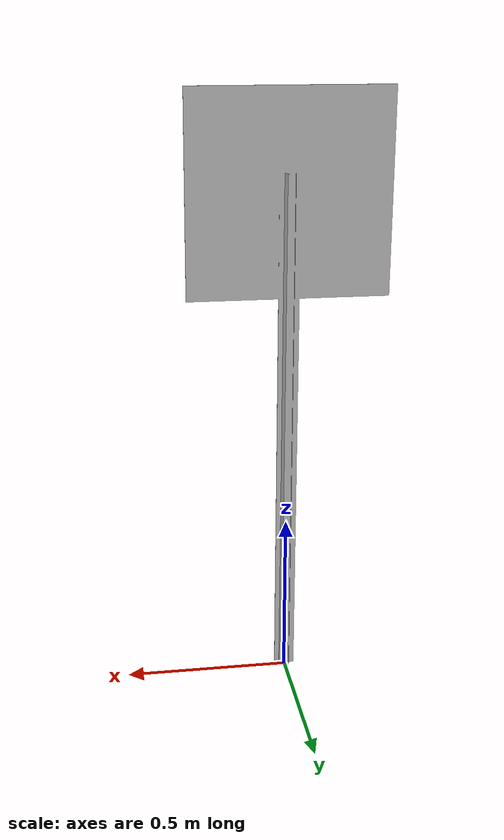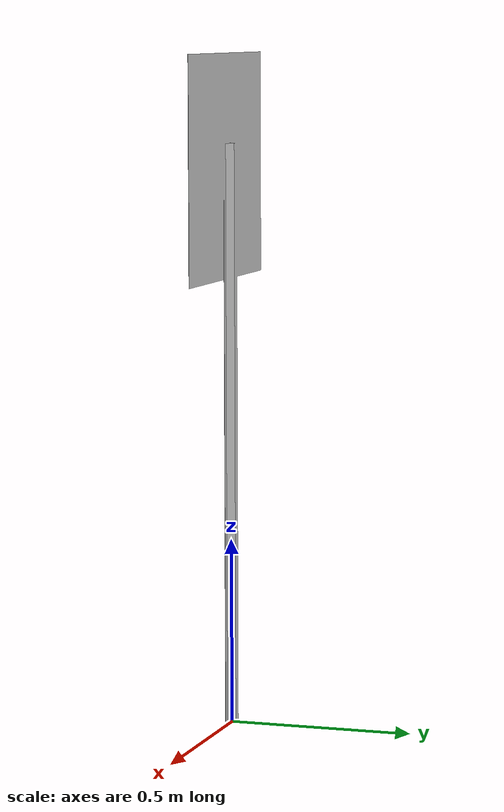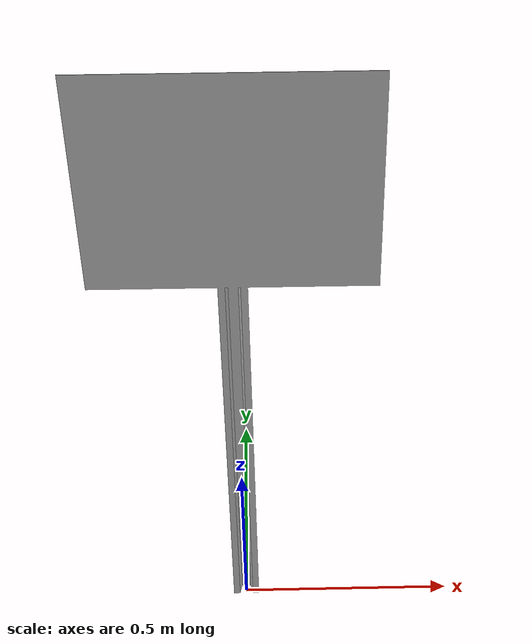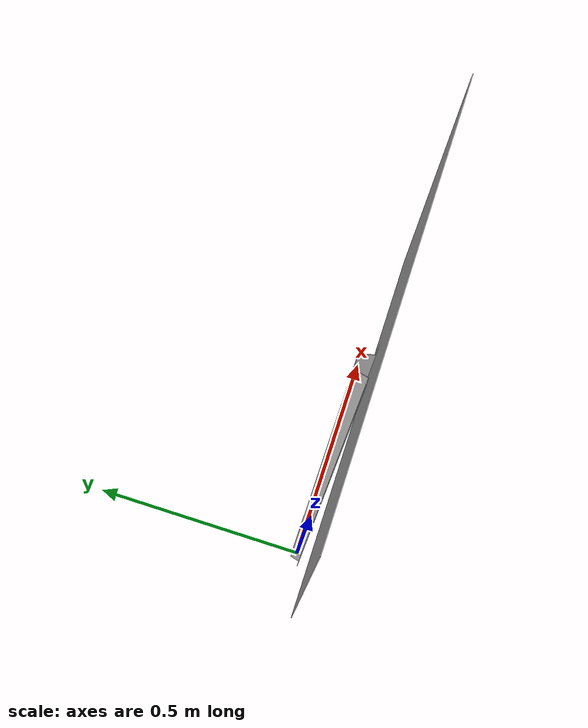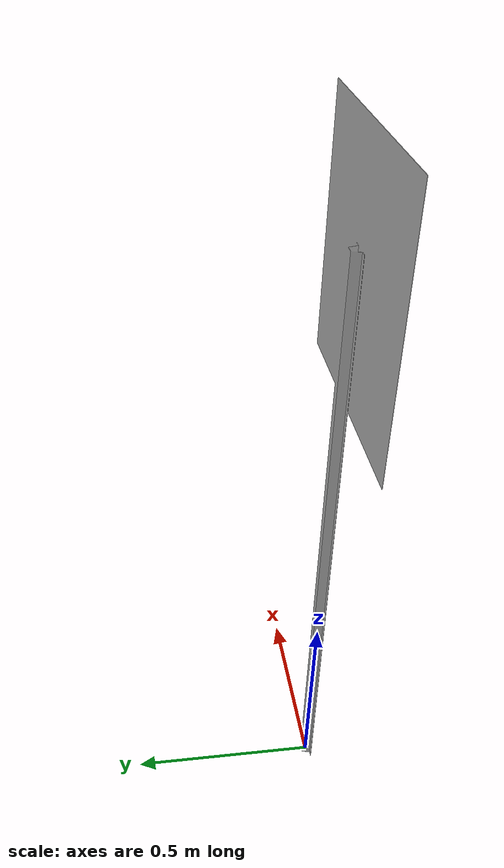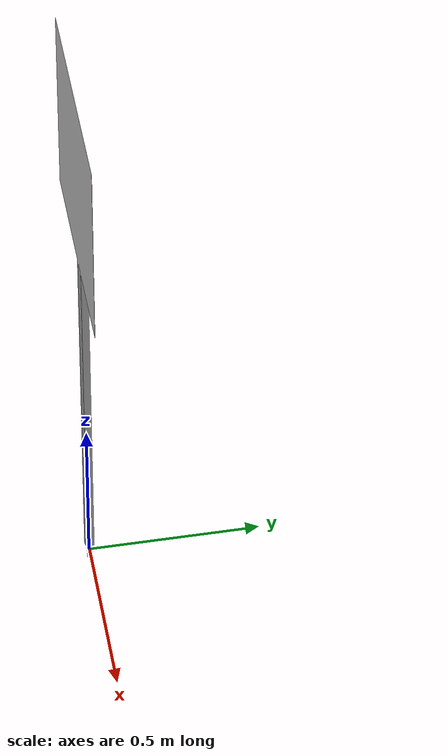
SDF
<?xml version="1.0" ?>
<sdf version="1.5">
  <model name="cast_sign">
    <static>true</static>
    <link name="link">
      <collision name="collision">
        <geometry>
          <mesh>
            <uri>model://cast_sign/meshes/cast_sign.dae</uri>
          </mesh>
        </geometry>
      </collision>
      <visual name="visual">
        <geometry>
          <mesh>
            <uri>model://cast_sign/meshes/cast_sign.dae</uri>
          </mesh>
        </geometry>
        <material>
          <script>
            <uri>model://cast_sign/materials/scripts</uri>
            <uri>model://cast_sign/materials/textures</uri>
            <name>CastSign/Diffuse</name>
          </script>
        </material>
      </visual>
    </link>
  </model>
</sdf>
